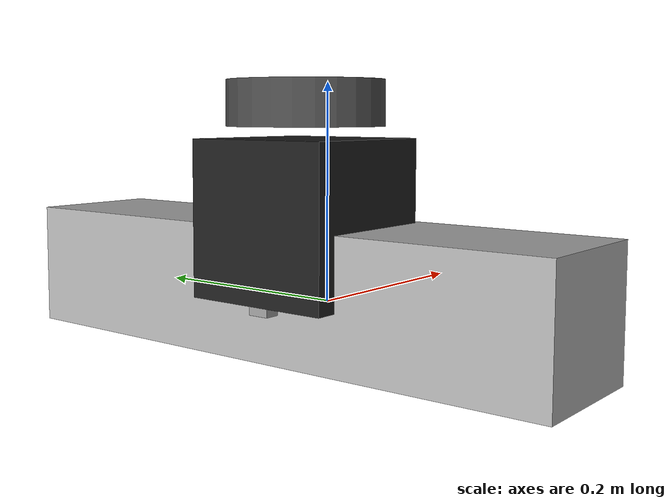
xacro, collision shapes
<?xml version="1.0" ?>
<robot name="turtlebot3_burger" xmlns:xacro="http://ros.org/wiki/xacro">
  <xacro:include filename="$(find turtlebot3_description)/urdf/common_properties.xacro"/>
  <xacro:include filename="$(find turtlebot3_description)/urdf/turtlebot3_burger.gazebo.xacro"/>

    <!-- Mount and camera parameters -->
  <xacro:property name="r200_cam_offset_px" value="-0.017" />
  <xacro:property name="r200_cam_offset_py" value="0.024" />
  <xacro:property name="r200_cam_offset_pz" value="0.005" />

  <link name="base_footprint"/>

  <joint name="base_joint" type="fixed">
    <parent link="base_footprint"/>
    <child link="base_link"/>
    <origin xyz="0.0 0.0 0.010" rpy="0 0 0"/>
  </joint>

  <link name="base_link">
    <visual>
      <origin xyz="-0.032 0 0.0" rpy="0 0 0"/>
      <geometry>
        <mesh filename="package://turtlebot3_description/meshes/bases/burger_base.stl" scale="0.001 0.001 0.001"/>
      </geometry>
      <material name="light_black"/>
    </visual>

    <collision>
      <origin xyz="-0.032 0 0.070" rpy="0 0 0"/>
      <geometry>
        <box size="0.140 0.140 0.140"/>
      </geometry>
    </collision>

    <inertial>
      <origin xyz="-0.032 0 0" rpy="0 0 0"/>
      <mass value="1"/>
      <inertia ixx="0.01" ixy="0.0" ixz="0.0"
               iyy="0.01" iyz="0.0"
               izz="0.01" />
    </inertial>
  </link>

  <joint name="wheel_left_joint" type="continuous">
    <parent link="base_link"/>
    <child link="wheel_left_link"/>
    <origin xyz="0.0 0.08 0.023" rpy="${-M_PI*0.5} 0 0"/>
    <axis xyz="0 0 1"/>
  </joint>

  <link name="wheel_left_link">
    <visual>
      <origin xyz="0 0 0" rpy="${M_PI*0.5} 0 0"/>
      <geometry>
        <mesh filename="package://turtlebot3_description/meshes/wheels/left_tire.stl" scale="0.001 0.001 0.001"/>
      </geometry>
      <material name="dark"/>
    </visual>

    <collision>
      <origin xyz="0 0 0" rpy="0 0 0"/>
      <geometry>
        <cylinder length="0.018" radius="0.033"/>
      </geometry>
    </collision>

    <inertial>
      <origin xyz="0 0 0" />
      <mass value="0.01" />
      <inertia ixx="0.001" ixy="0.0" ixz="0.0"
               iyy="0.001" iyz="0.0"
               izz="0.001" />
    </inertial>
  </link>

  <joint name="wheel_right_joint" type="continuous">
    <parent link="base_link"/>
    <child link="wheel_right_link"/>
    <origin xyz="0.0 -0.08 0.023" rpy="${-M_PI*0.5} 0 0"/>
    <axis xyz="0 0 1"/>
  </joint>

  <link name="wheel_right_link">
    <visual>
      <origin xyz="0 0 0" rpy="${M_PI*0.5} 0 0"/>
      <geometry>
        <mesh filename="package://turtlebot3_description/meshes/wheels/right_tire.stl" scale="0.001 0.001 0.001"/>
      </geometry>
      <material name="dark"/>
    </visual>

    <collision>
      <origin xyz="0 0 0" rpy="0 0 0"/>
      <geometry>
        <cylinder length="0.018" radius="0.033"/>
      </geometry>
    </collision>

    <inertial>
      <origin xyz="0 0 0" />
      <mass value="0.01" />
      <inertia ixx="0.001" ixy="0.0" ixz="0.0"
               iyy="0.001" iyz="0.0"
               izz="0.001" />
    </inertial>
  </link>

  <joint name="caster_back_joint" type="fixed">
    <parent link="base_link"/>
    <child link="caster_back_link"/>
    <origin xyz="-0.081 0 -0.004" rpy="${-M_PI*0.5} 0 0"/>
  </joint>

  <link name="caster_back_link">
    <collision>
      <origin xyz="0 0 0" rpy="0 0 0"/>
      <geometry>
        <box size="0.030 0.010 0.020"/>
      </geometry>
    </collision>

    <inertial>
      <origin xyz="0 0 0" />
      <mass value="0.01" />
      <inertia ixx="0.001" ixy="0.0" ixz="0.0"
               iyy="0.001" iyz="0.0"
               izz="0.001" />
    </inertial>
  </link>

  <joint name="imu_joint" type="fixed">
    <parent link="base_link"/>
    <child link="imu_link"/>
    <origin xyz="-0.032 0 0.068" rpy="0 0 0"/>
  </joint>

  <link name="imu_link"/>

  <joint name="scan_joint" type="fixed">
    <parent link="base_link"/>
    <child link="base_scan"/>
    <origin xyz="-0.032 0 0.171" rpy="0 0 0"/>
  </joint>

  <link name="base_scan">
    <visual>
      <origin xyz="0 0 0.0" rpy="0 0 0"/>
      <geometry>
        <mesh filename="package://turtlebot3_description/meshes/sensors/lds.stl" scale="0.001 0.001 0.001"/>
      </geometry>
      <material name="dark"/>
    </visual>

    <collision>
      <origin xyz="0 0 0" rpy="0 0 0"/>
      <geometry>
        <cylinder length="0.0408" radius="0.070"/>
      </geometry>
    </collision>

    <inertial>
      <mass value="0.01" />
      <origin xyz="0 0 0" />
      <inertia ixx="0.001" ixy="0.0" ixz="0.0"
               iyy="0.001" iyz="0.0"
               izz="0.001" />
    </inertial>
  </link>

  <joint name="camera_joint" type="fixed">
    <axis xyz="0 1 0" />
    <origin xyz="${r200_cam_offset_px} ${r200_cam_offset_py} ${r200_cam_offset_pz}" rpy="0 0 0"/>
    <parent link="base_link"/>
    <child link="camera_link"/>
  </joint>

  <!-- Camera -->
  <link name="camera_link">
    <collision>
      <origin xyz="0.0 0.0 0.0" rpy="0 0 0"/>
        <geometry>
          <box size="0.130 0.567 0.118"/>
        </geometry>
    </collision>

    <visual>
      <origin xyz="0 0 0" rpy="${M_PI/2} 0 ${M_PI/2}"/>
        <geometry>
         <mesh filename="package://turtlebot3_description/meshes/sensors/r200.dae" />
        </geometry>
    </visual>

    <inertial>
      <mass value="0.564" />
        <origin xyz="0 0 0" />
        <inertia ixx="0.003881243" ixy="0.0" ixz="0.0"
                 iyy="0.000498940" iyz="0.0"
                 izz="0.003879257" />
    </inertial>
  </link>

</robot>
